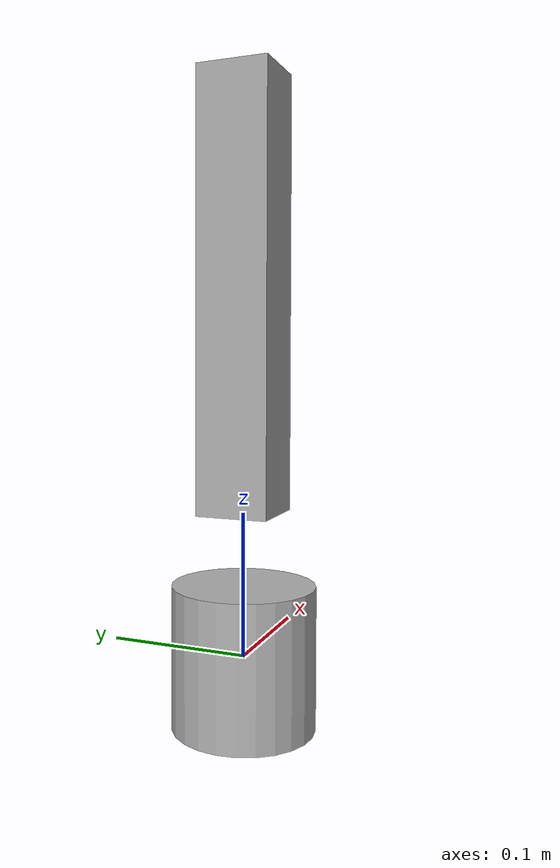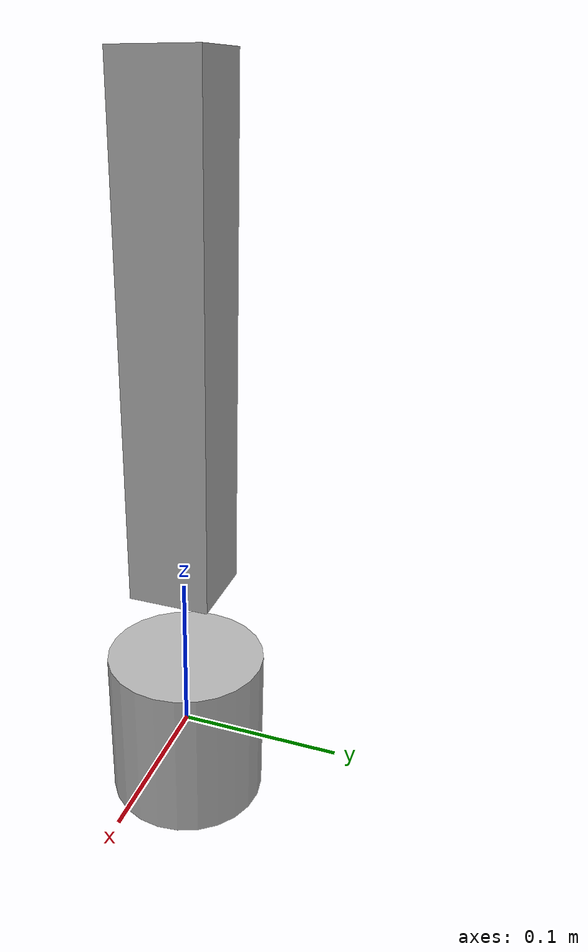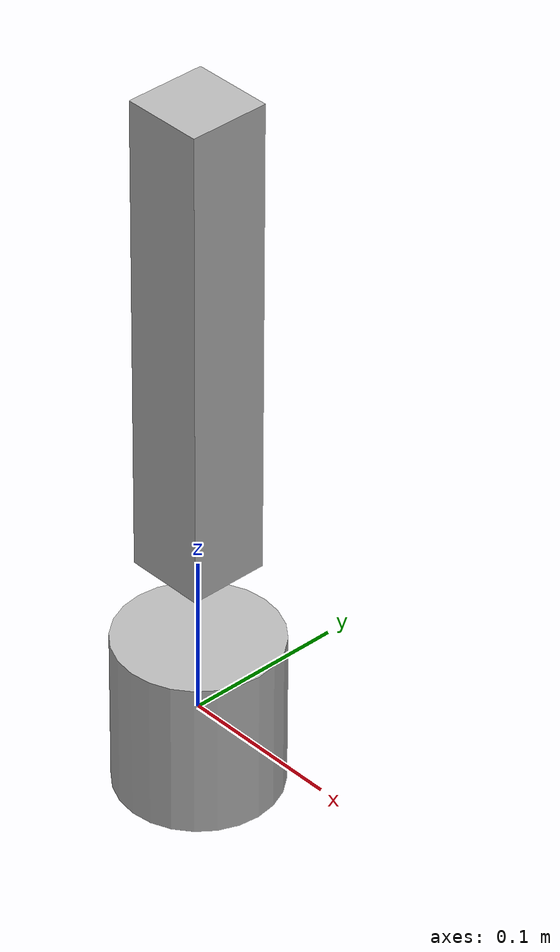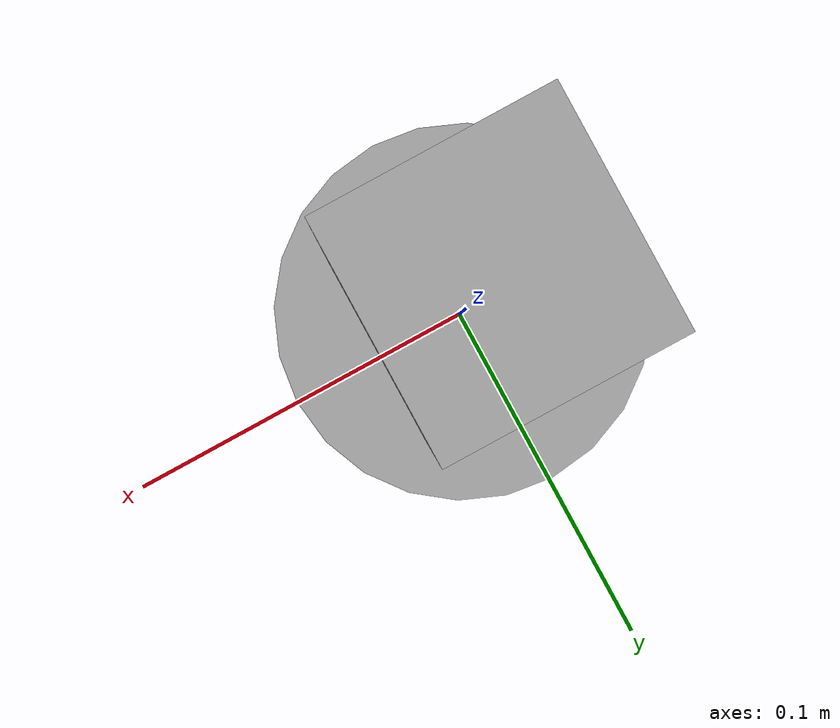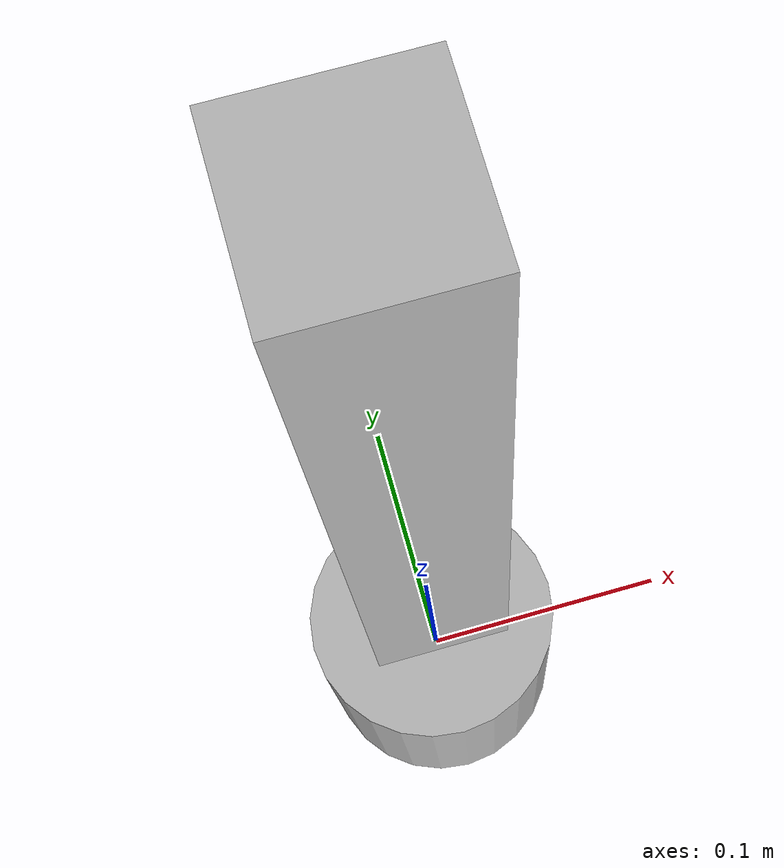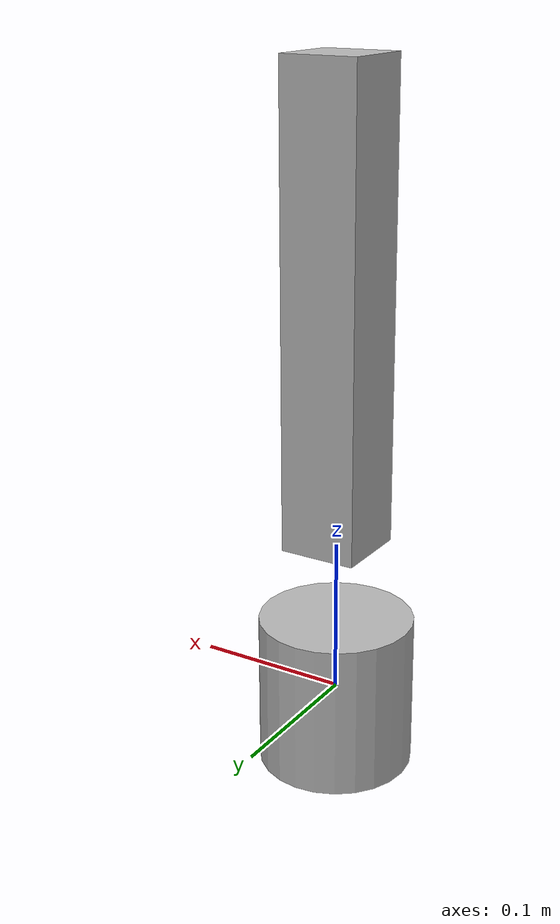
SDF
<?xml version="1.0" ?>
<sdf version="1.6">
  <model name="simple_arm">
    <static>true</static>

    <link name="base">
      <visual name="base_visual">
        <geometry>
          <cylinder>
            <radius>0.05</radius>
            <length>0.1</length>
          </cylinder>
        </geometry>
      </visual>
    </link>

    <link name="arm">
      <pose>0 0 0.25 0 0 0</pose>
      <visual name="arm_visual">
        <geometry>
          <box>
            <size>0.05 0.05 0.3</size>
          </box>
        </geometry>
      </visual>
    </link>
  </model>
</sdf>
